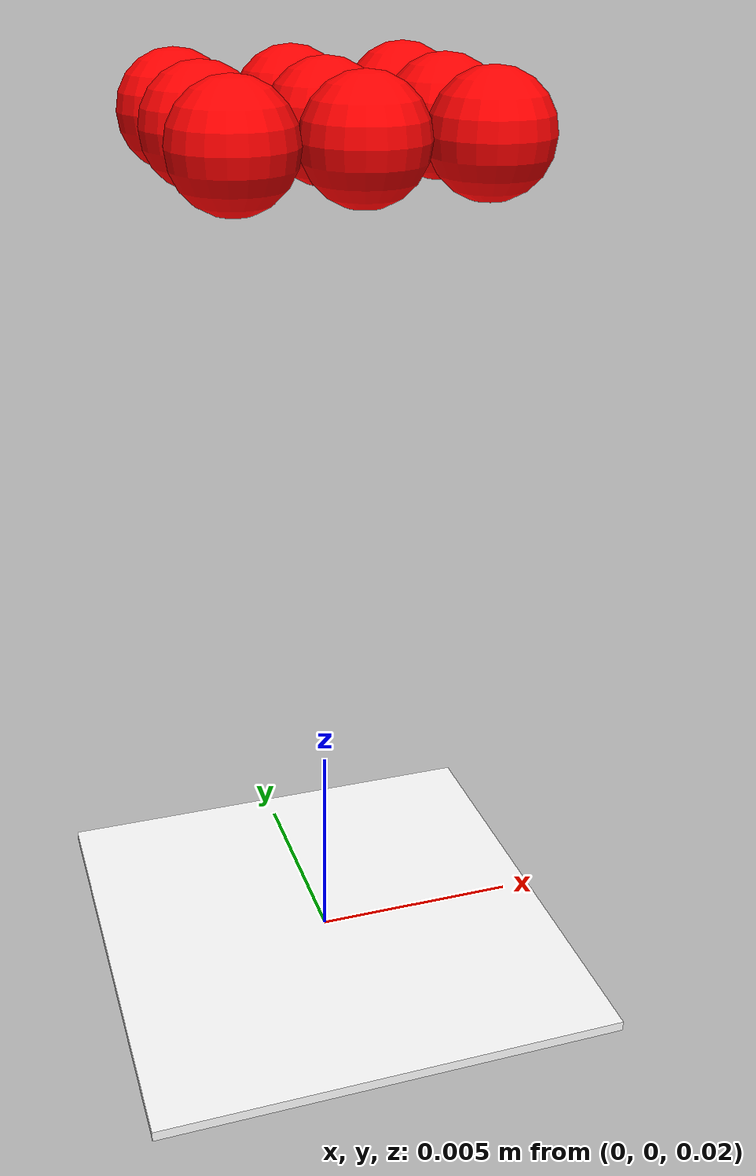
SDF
<sdf version='1.4'>
  <model name='spring_array'>
    <pose>0 0 0 0 -0 0</pose>
    <link name='plane'>
      <pose>0 0 0.02 0 -0 0</pose>
      <inertial>
        <mass>20</mass>
      </inertial>
      <collision name='collision'>
        <geometry>
          <box>
            <size>0.01125 0.01125 0.00025</size>
          </box>
        </geometry>
        <surface>
          <friction>
            <ode>
              <mu>0</mu>
              <mu2>0</mu2>
            </ode>
          </friction>
        </surface>
      </collision>
      <visual name='visual'>
        <geometry>
          <box>
            <size>0.01125 0.01125 0.00025</size>
          </box>
        </geometry>
        <material>
          <ambient>1 1 1 1</ambient>
          <diffuse>1 1 1 1</diffuse>
          <specular>0.1 0.1 0.1 1</specular>
          <emissive>0 0 0 0</emissive>
        </material>
      </visual>
      <velocity_decay>
        <linear>0</linear>
        <angular>0</angular>
      </velocity_decay>
    </link>
    <joint name='plane_joint' type='prismatic'>
      <parent>world</parent>
      <child>plane</child>
      <axis>
        <xyz>0 0 1</xyz>
        <limit>
          <lower>1e+16</lower>
          <upper>-1e+16</upper>
        </limit>
      </axis>
    </joint>
    <link name='spring_1'>
      <pose>-0.0025 0.0025 0.04 0 -0 0</pose>
      <inertial>
        <mass>0.00235</mass>
      </inertial>
      <collision name='sphere_collision'>
        <geometry>
          <sphere>
            <radius>0.00125</radius>
          </sphere>
        </geometry>
        <surface>
          <friction>
            <ode>
              <mu>0</mu>
              <mu2>0</mu2>
            </ode>
          </friction>
        </surface>
      </collision>
      <visual name='visual'>
        <geometry>
          <sphere>
            <radius>0.00125</radius>
          </sphere>
        </geometry>
        <material>
          <ambient>1 0 0 1</ambient>
          <diffuse>1 0 0 1</diffuse>
          <specular>0.1 0.1 0.1 1</specular>
          <emissive>0 0 0 0</emissive>
        </material>
      </visual>
      <velocity_decay>
        <linear>0</linear>
        <angular>0</angular>
      </velocity_decay>
    </link>
    <joint name='spring_joint_1' type='prismatic'>
      <parent>plane</parent>
      <child>spring_1</child>
      <axis>
        <xyz>0 0 1</xyz>
        <limit>
          <lower>-1e+16</lower>
          <upper>1e+16</upper>
        </limit>
      </axis>
    </joint>
    <link name='spring_2'>
      <pose>4.33681e-19 0.0025 0.04 0 -0 0</pose>
      <inertial>
        <mass>0.00235</mass>
      </inertial>
      <collision name='sphere_collision'>
        <geometry>
          <sphere>
            <radius>0.00125</radius>
          </sphere>
        </geometry>
        <surface>
          <friction>
            <ode>
              <mu>0</mu>
              <mu2>0</mu2>
            </ode>
          </friction>
        </surface>
      </collision>
      <visual name='visual'>
        <geometry>
          <sphere>
            <radius>0.00125</radius>
          </sphere>
        </geometry>
        <material>
          <ambient>1 0 0 1</ambient>
          <diffuse>1 0 0 1</diffuse>
          <specular>0.1 0.1 0.1 1</specular>
          <emissive>0 0 0 0</emissive>
        </material>
      </visual>
      <velocity_decay>
        <linear>0</linear>
        <angular>0</angular>
      </velocity_decay>
    </link>
    <joint name='spring_joint_2' type='prismatic'>
      <parent>plane</parent>
      <child>spring_2</child>
      <axis>
        <xyz>0 0 1</xyz>
        <limit>
          <lower>-1e+16</lower>
          <upper>1e+16</upper>
        </limit>
      </axis>
    </joint>
    <link name='spring_3'>
      <pose>0.0025 0.0025 0.04 0 -0 0</pose>
      <inertial>
        <mass>0.00235</mass>
      </inertial>
      <collision name='sphere_collision'>
        <geometry>
          <sphere>
            <radius>0.00125</radius>
          </sphere>
        </geometry>
        <surface>
          <friction>
            <ode>
              <mu>0</mu>
              <mu2>0</mu2>
            </ode>
          </friction>
        </surface>
      </collision>
      <visual name='visual'>
        <geometry>
          <sphere>
            <radius>0.00125</radius>
          </sphere>
        </geometry>
        <material>
          <ambient>1 0 0 1</ambient>
          <diffuse>1 0 0 1</diffuse>
          <specular>0.1 0.1 0.1 1</specular>
          <emissive>0 0 0 0</emissive>
        </material>
      </visual>
      <velocity_decay>
        <linear>0</linear>
        <angular>0</angular>
      </velocity_decay>
    </link>
    <joint name='spring_joint_3' type='prismatic'>
      <parent>plane</parent>
      <child>spring_3</child>
      <axis>
        <xyz>0 0 1</xyz>
        <limit>
          <lower>-1e+16</lower>
          <upper>1e+16</upper>
        </limit>
      </axis>
    </joint>
    <link name='spring_4'>
      <pose>-0.0025 -4.33681e-19 0.04 0 -0 0</pose>
      <inertial>
        <mass>0.00235</mass>
      </inertial>
      <collision name='sphere_collision'>
        <geometry>
          <sphere>
            <radius>0.00125</radius>
          </sphere>
        </geometry>
        <surface>
          <friction>
            <ode>
              <mu>0</mu>
              <mu2>0</mu2>
            </ode>
          </friction>
        </surface>
      </collision>
      <visual name='visual'>
        <geometry>
          <sphere>
            <radius>0.00125</radius>
          </sphere>
        </geometry>
        <material>
          <ambient>1 0 0 1</ambient>
          <diffuse>1 0 0 1</diffuse>
          <specular>0.1 0.1 0.1 1</specular>
          <emissive>0 0 0 0</emissive>
        </material>
      </visual>
      <velocity_decay>
        <linear>0</linear>
        <angular>0</angular>
      </velocity_decay>
    </link>
    <joint name='spring_joint_4' type='prismatic'>
      <parent>plane</parent>
      <child>spring_4</child>
      <axis>
        <xyz>0 0 1</xyz>
        <limit>
          <lower>-1e+16</lower>
          <upper>1e+16</upper>
        </limit>
      </axis>
    </joint>
    <link name='spring_5'>
      <pose>4.33681e-19 -4.33681e-19 0.04 0 -0 0</pose>
      <inertial>
        <mass>0.00235</mass>
      </inertial>
      <collision name='sphere_collision'>
        <geometry>
          <sphere>
            <radius>0.00125</radius>
          </sphere>
        </geometry>
        <surface>
          <friction>
            <ode>
              <mu>0</mu>
              <mu2>0</mu2>
            </ode>
          </friction>
        </surface>
      </collision>
      <visual name='visual'>
        <geometry>
          <sphere>
            <radius>0.00125</radius>
          </sphere>
        </geometry>
        <material>
          <ambient>1 0 0 1</ambient>
          <diffuse>1 0 0 1</diffuse>
          <specular>0.1 0.1 0.1 1</specular>
          <emissive>0 0 0 0</emissive>
        </material>
      </visual>
      <velocity_decay>
        <linear>0</linear>
        <angular>0</angular>
      </velocity_decay>
    </link>
    <joint name='spring_joint_5' type='prismatic'>
      <parent>plane</parent>
      <child>spring_5</child>
      <axis>
        <xyz>0 0 1</xyz>
        <limit>
          <lower>-1e+16</lower>
          <upper>1e+16</upper>
        </limit>
      </axis>
    </joint>
    <link name='spring_6'>
      <pose>0.0025 -4.33681e-19 0.04 0 -0 0</pose>
      <inertial>
        <mass>0.00235</mass>
      </inertial>
      <collision name='sphere_collision'>
        <geometry>
          <sphere>
            <radius>0.00125</radius>
          </sphere>
        </geometry>
        <surface>
          <friction>
            <ode>
              <mu>0</mu>
              <mu2>0</mu2>
            </ode>
          </friction>
        </surface>
      </collision>
      <visual name='visual'>
        <geometry>
          <sphere>
            <radius>0.00125</radius>
          </sphere>
        </geometry>
        <material>
          <ambient>1 0 0 1</ambient>
          <diffuse>1 0 0 1</diffuse>
          <specular>0.1 0.1 0.1 1</specular>
          <emissive>0 0 0 0</emissive>
        </material>
      </visual>
      <velocity_decay>
        <linear>0</linear>
        <angular>0</angular>
      </velocity_decay>
    </link>
    <joint name='spring_joint_6' type='prismatic'>
      <parent>plane</parent>
      <child>spring_6</child>
      <axis>
        <xyz>0 0 1</xyz>
        <limit>
          <lower>-1e+16</lower>
          <upper>1e+16</upper>
        </limit>
      </axis>
    </joint>
    <link name='spring_7'>
      <pose>-0.0025 -0.0025 0.04 0 -0 0</pose>
      <inertial>
        <mass>0.00235</mass>
      </inertial>
      <collision name='sphere_collision'>
        <geometry>
          <sphere>
            <radius>0.00125</radius>
          </sphere>
        </geometry>
        <surface>
          <friction>
            <ode>
              <mu>0</mu>
              <mu2>0</mu2>
            </ode>
          </friction>
        </surface>
      </collision>
      <visual name='visual'>
        <geometry>
          <sphere>
            <radius>0.00125</radius>
          </sphere>
        </geometry>
        <material>
          <ambient>1 0 0 1</ambient>
          <diffuse>1 0 0 1</diffuse>
          <specular>0.1 0.1 0.1 1</specular>
          <emissive>0 0 0 0</emissive>
        </material>
      </visual>
      <velocity_decay>
        <linear>0</linear>
        <angular>0</angular>
      </velocity_decay>
    </link>
    <joint name='spring_joint_7' type='prismatic'>
      <parent>plane</parent>
      <child>spring_7</child>
      <axis>
        <xyz>0 0 1</xyz>
        <limit>
          <lower>-1e+16</lower>
          <upper>1e+16</upper>
        </limit>
      </axis>
    </joint>
    <link name='spring_8'>
      <pose>4.33681e-19 -0.0025 0.04 0 -0 0</pose>
      <inertial>
        <mass>0.00235</mass>
      </inertial>
      <collision name='sphere_collision'>
        <geometry>
          <sphere>
            <radius>0.00125</radius>
          </sphere>
        </geometry>
        <surface>
          <friction>
            <ode>
              <mu>0</mu>
              <mu2>0</mu2>
            </ode>
          </friction>
        </surface>
      </collision>
      <visual name='visual'>
        <geometry>
          <sphere>
            <radius>0.00125</radius>
          </sphere>
        </geometry>
        <material>
          <ambient>1 0 0 1</ambient>
          <diffuse>1 0 0 1</diffuse>
          <specular>0.1 0.1 0.1 1</specular>
          <emissive>0 0 0 0</emissive>
        </material>
      </visual>
      <velocity_decay>
        <linear>0</linear>
        <angular>0</angular>
      </velocity_decay>
    </link>
    <joint name='spring_joint_8' type='prismatic'>
      <parent>plane</parent>
      <child>spring_8</child>
      <axis>
        <xyz>0 0 1</xyz>
        <limit>
          <lower>-1e+16</lower>
          <upper>1e+16</upper>
        </limit>
      </axis>
    </joint>
    <link name='spring_9'>
      <pose>0.0025 -0.0025 0.04 0 -0 0</pose>
      <inertial>
        <mass>0.00235</mass>
      </inertial>
      <collision name='sphere_collision'>
        <geometry>
          <sphere>
            <radius>0.00125</radius>
          </sphere>
        </geometry>
        <surface>
          <friction>
            <ode>
              <mu>0</mu>
              <mu2>0</mu2>
            </ode>
          </friction>
        </surface>
      </collision>
      <visual name='visual'>
        <geometry>
          <sphere>
            <radius>0.00125</radius>
          </sphere>
        </geometry>
        <material>
          <ambient>1 0 0 1</ambient>
          <diffuse>1 0 0 1</diffuse>
          <specular>0.1 0.1 0.1 1</specular>
          <emissive>0 0 0 0</emissive>
        </material>
      </visual>
      <velocity_decay>
        <linear>0</linear>
        <angular>0</angular>
      </velocity_decay>
    </link>
    <joint name='spring_joint_9' type='prismatic'>
      <parent>plane</parent>
      <child>spring_9</child>
      <axis>
        <xyz>0 0 1</xyz>
        <limit>
          <lower>-1e+16</lower>
          <upper>1e+16</upper>
        </limit>
      </axis>
    </joint>
    <plugin name='skin_tactile_joint' filename='libTactileSensorPlugin.so'/>
    <plugin name='skin_tactile_joint' filename='libSkinJointPlugin.so'/>
    <plugin name='plane_joint' filename='libplane_joint.so'/>
  </model>
</sdf>
